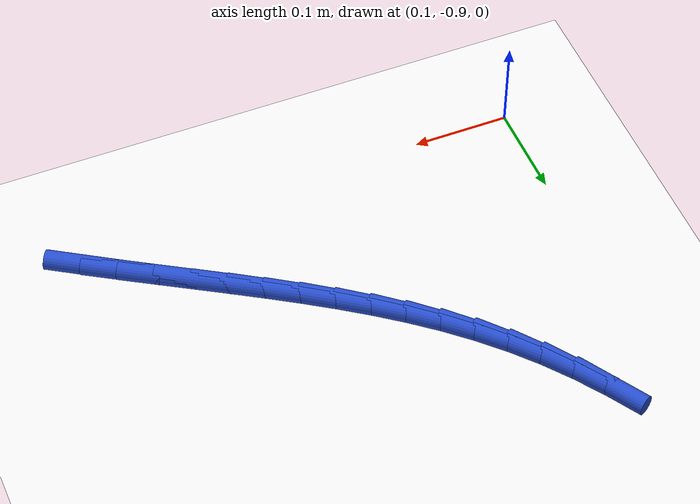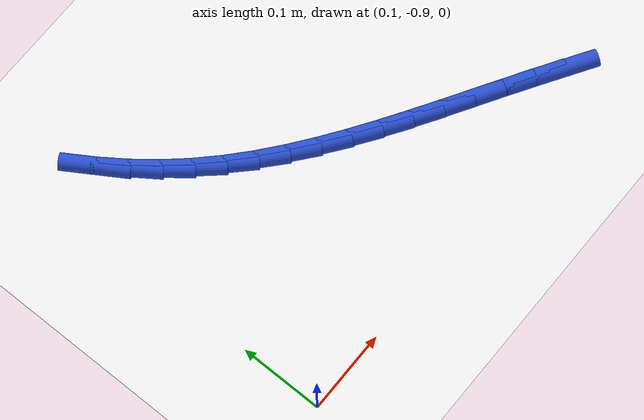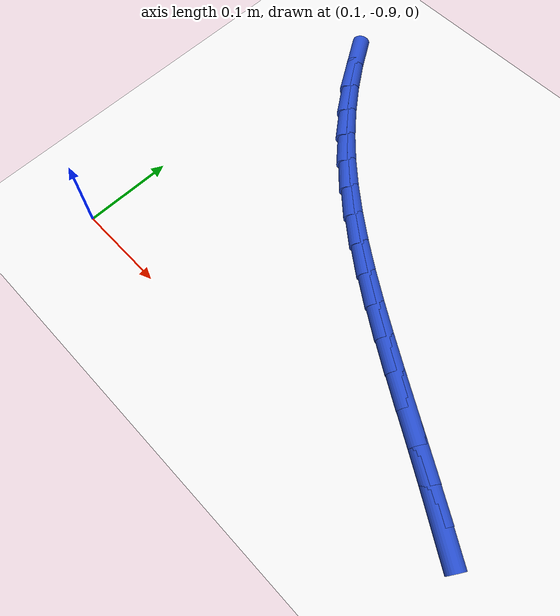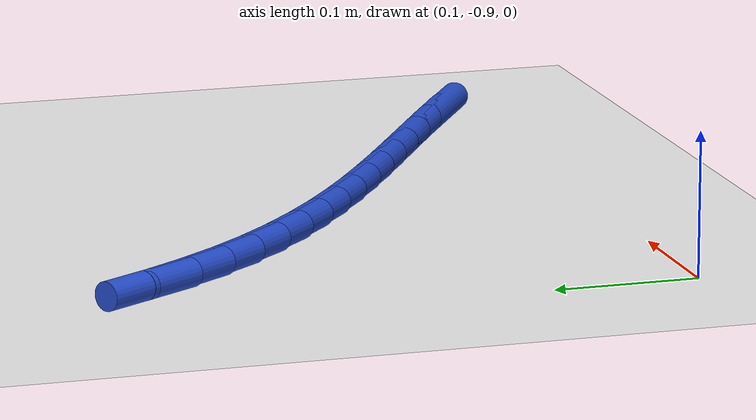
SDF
<sdf version="1.6">
 <world name="default">
  <model name="ground_plane">
   <static>1</static>
   <link name="link">
    <collision name="collision">
     <geometry><plane><normal>0 0 1</normal><size>100 100</size></plane></geometry>
     <surface><friction><ode><mu>100</mu><mu2>50</mu2></ode></friction></surface>
    </collision>
    <visual name="visual">
     <cast_shadows>0</cast_shadows>
     <geometry><plane><normal>0 0 1</normal><size>100 100</size></plane></geometry>
     <material>
      <script><uri>file://media/materials/scripts/gazebo.material</uri><name>Gazebo/WhiteGlow</name></script>
     </material>
    </visual>
   </link>
  </model>
  <model name="line">
   <link name="link_159">
    <pose>0.5684512276745325 -0.8691388101171593 0.01 0 1.57 -0.5613946066554216</pose>
    <collision name="collision">
     <geometry><cylinder><radius>0.01</radius><length>0.08</length></cylinder></geometry>
    </collision>
    <visual name="visual">
     <material>
      <script><name>Gazebo/Blue</name><uri>file://media/materials/scripts/gazebo.material</uri></script>
     </material>
     <geometry><cylinder><radius>0.01</radius><length>0.08</length></cylinder></geometry>
    </visual>
   </link>
   <link name="link_160">
    <pose>0.5373124057797254 -0.8495557913874637 0.01 0 1.57 -0.5498472975525691</pose>
    <collision name="collision">
     <geometry><cylinder><radius>0.01</radius><length>0.08</length></cylinder></geometry>
    </collision>
    <visual name="visual">
     <material>
      <script><name>Gazebo/Blue</name><uri>file://media/materials/scripts/gazebo.material</uri></script>
     </material>
     <geometry><cylinder><radius>0.01</radius><length>0.08</length></cylinder></geometry>
    </visual>
   </link>
   <link name="link_161">
    <pose>0.506111965447468 -0.8304331934551327 0.01 0 1.57 -0.5443634753385199</pose>
    <collision name="collision">
     <geometry><cylinder><radius>0.01</radius><length>0.08</length></cylinder></geometry>
    </collision>
    <visual name="visual">
     <material>
      <script><name>Gazebo/Blue</name><uri>file://media/materials/scripts/gazebo.material</uri></script>
     </material>
     <geometry><cylinder><radius>0.01</radius><length>0.08</length></cylinder></geometry>
    </visual>
   </link>
   <link name="link_162">
    <pose>0.47498468372079616 -0.811589466815488 0.01 0 1.57 -0.5450391067410989</pose>
    <collision name="collision">
     <geometry><cylinder><radius>0.01</radius><length>0.08</length></cylinder></geometry>
    </collision>
    <visual name="visual">
     <material>
      <script><name>Gazebo/Blue</name><uri>file://media/materials/scripts/gazebo.material</uri></script>
     </material>
     <geometry><cylinder><radius>0.01</radius><length>0.08</length></cylinder></geometry>
    </visual>
   </link>
   <link name="link_163">
    <pose>0.4440653376427466 -0.7928430619638521 0.01 0 1.57 -0.5519927718752677</pose>
    <collision name="collision">
     <geometry><cylinder><radius>0.01</radius><length>0.08</length></cylinder></geometry>
    </collision>
    <visual name="visual">
     <material>
      <script><name>Gazebo/Blue</name><uri>file://media/materials/scripts/gazebo.material</uri></script>
     </material>
     <geometry><cylinder><radius>0.01</radius><length>0.08</length></cylinder></geometry>
    </visual>
   </link>
   <link name="link_164">
    <pose>0.41348870425635526 -0.7740124293955463 0.01 0 1.57 -0.5653661698074073</pose>
    <collision name="collision">
     <geometry><cylinder><radius>0.01</radius><length>0.08</length></cylinder></geometry>
    </collision>
    <visual name="visual">
     <material>
      <script><name>Gazebo/Blue</name><uri>file://media/materials/scripts/gazebo.material</uri></script>
     </material>
     <geometry><cylinder><radius>0.01</radius><length>0.08</length></cylinder></geometry>
    </visual>
   </link>
   <link name="link_165">
    <pose>0.38338956060465845 -0.754916019605893 0.01 0 1.57 -0.5853170020564088</pose>
    <collision name="collision">
     <geometry><cylinder><radius>0.01</radius><length>0.08</length></cylinder></geometry>
    </collision>
    <visual name="visual">
     <material>
      <script><name>Gazebo/Blue</name><uri>file://media/materials/scripts/gazebo.material</uri></script>
     </material>
     <geometry><cylinder><radius>0.01</radius><length>0.08</length></cylinder></geometry>
    </visual>
   </link>
   <link name="link_166">
    <pose>0.353902683730693 -0.7353722830902142 0.01 0 1.57 -0.6120028830571625</pose>
    <collision name="collision">
     <geometry><cylinder><radius>0.01</radius><length>0.08</length></cylinder></geometry>
    </collision>
    <visual name="visual">
     <material>
      <script><name>Gazebo/Blue</name><uri>file://media/materials/scripts/gazebo.material</uri></script>
     </material>
     <geometry><cylinder><radius>0.01</radius><length>0.08</length></cylinder></geometry>
    </visual>
   </link>
   <link name="link_167">
    <pose>0.325162850677494 -0.7151996703438314 0.01 0 1.57 -0.6455547529300252</pose>
    <collision name="collision">
     <geometry><cylinder><radius>0.01</radius><length>0.08</length></cylinder></geometry>
    </collision>
    <visual name="visual">
     <material>
      <script><name>Gazebo/Blue</name><uri>file://media/materials/scripts/gazebo.material</uri></script>
     </material>
     <geometry><cylinder><radius>0.01</radius><length>0.08</length></cylinder></geometry>
    </visual>
   </link>
   <link name="link_168">
    <pose>0.29730483848809824 -0.6942166318620667 0.01 0 1.57 -0.6860386648762234</pose>
    <collision name="collision">
     <geometry><cylinder><radius>0.01</radius><length>0.08</length></cylinder></geometry>
    </collision>
    <visual name="visual">
     <material>
      <script><name>Gazebo/Blue</name><uri>file://media/materials/scripts/gazebo.material</uri></script>
     </material>
     <geometry><cylinder><radius>0.01</radius><length>0.08</length></cylinder></geometry>
    </visual>
   </link>
   <link name="link_169">
    <pose>0.2704634242055421 -0.6722416181402421 0.01 0 1.57 -0.7334062639207816</pose>
    <collision name="collision">
     <geometry><cylinder><radius>0.01</radius><length>0.08</length></cylinder></geometry>
    </collision>
    <visual name="visual">
     <material>
      <script><name>Gazebo/Blue</name><uri>file://media/materials/scripts/gazebo.material</uri></script>
     </material>
     <geometry><cylinder><radius>0.01</radius><length>0.08</length></cylinder></geometry>
    </visual>
   </link>
   <link name="link_170">
    <pose>0.24477338487286163 -0.6490930796736796 0.01 0 1.57 -0.7874372215763605</pose>
    <collision name="collision">
     <geometry><cylinder><radius>0.01</radius><length>0.08</length></cylinder></geometry>
    </collision>
    <visual name="visual">
     <material>
      <script><name>Gazebo/Blue</name><uri>file://media/materials/scripts/gazebo.material</uri></script>
     </material>
     <geometry><cylinder><radius>0.01</radius><length>0.08</length></cylinder></geometry>
    </visual>
   </link>
   <link name="link_171">
    <pose>0.22036949753309326 -0.624589466957701 0.01 0 1.57 -0.8473255210210477</pose>
    <collision name="collision">
     <geometry><cylinder><radius>0.01</radius><length>0.08</length></cylinder></geometry>
    </collision>
    <visual name="visual">
     <material>
      <script><name>Gazebo/Blue</name><uri>file://media/materials/scripts/gazebo.material</uri></script>
     </material>
     <geometry><cylinder><radius>0.01</radius><length>0.08</length></cylinder></geometry>
    </visual>
   </link>
   <link name="link_172">
    <pose>0.19738041509160473 -0.5985609689012629 0.01 0 1.57 -0.9071141765825341</pose>
    <collision name="collision">
     <geometry><cylinder><radius>0.01</radius><length>0.08</length></cylinder></geometry>
    </collision>
    <visual name="visual">
     <material>
      <script><name>Gazebo/Blue</name><uri>file://media/materials/scripts/gazebo.material</uri></script>
     </material>
     <geometry><cylinder><radius>0.01</radius><length>0.08</length></cylinder></geometry>
    </visual>
   </link>
   <link name="link_173">
    <pose>0.17584094230197972 -0.571017657440769 0.01 0 1.57 -0.9625521886100343</pose>
    <collision name="collision">
     <geometry><cylinder><radius>0.01</radius><length>0.08</length></cylinder></geometry>
    </collision>
    <visual name="visual">
     <material>
      <script><name>Gazebo/Blue</name><uri>file://media/materials/scripts/gazebo.material</uri></script>
     </material>
     <geometry><cylinder><radius>0.01</radius><length>0.08</length></cylinder></geometry>
    </visual>
   </link>
   <link name="link_174">
    <pose>0.1557124906428276 -0.5421102807459477 0.01 0 1.57 -1.0137533050953418</pose>
    <collision name="collision">
     <geometry><cylinder><radius>0.01</radius><length>0.08</length></cylinder></geometry>
    </collision>
    <visual name="visual">
     <material>
      <script><name>Gazebo/Blue</name><uri>file://media/materials/scripts/gazebo.material</uri></script>
     </material>
     <geometry><cylinder><radius>0.01</radius><length>0.08</length></cylinder></geometry>
    </visual>
   </link>
  </model>
 </world>
</sdf>
